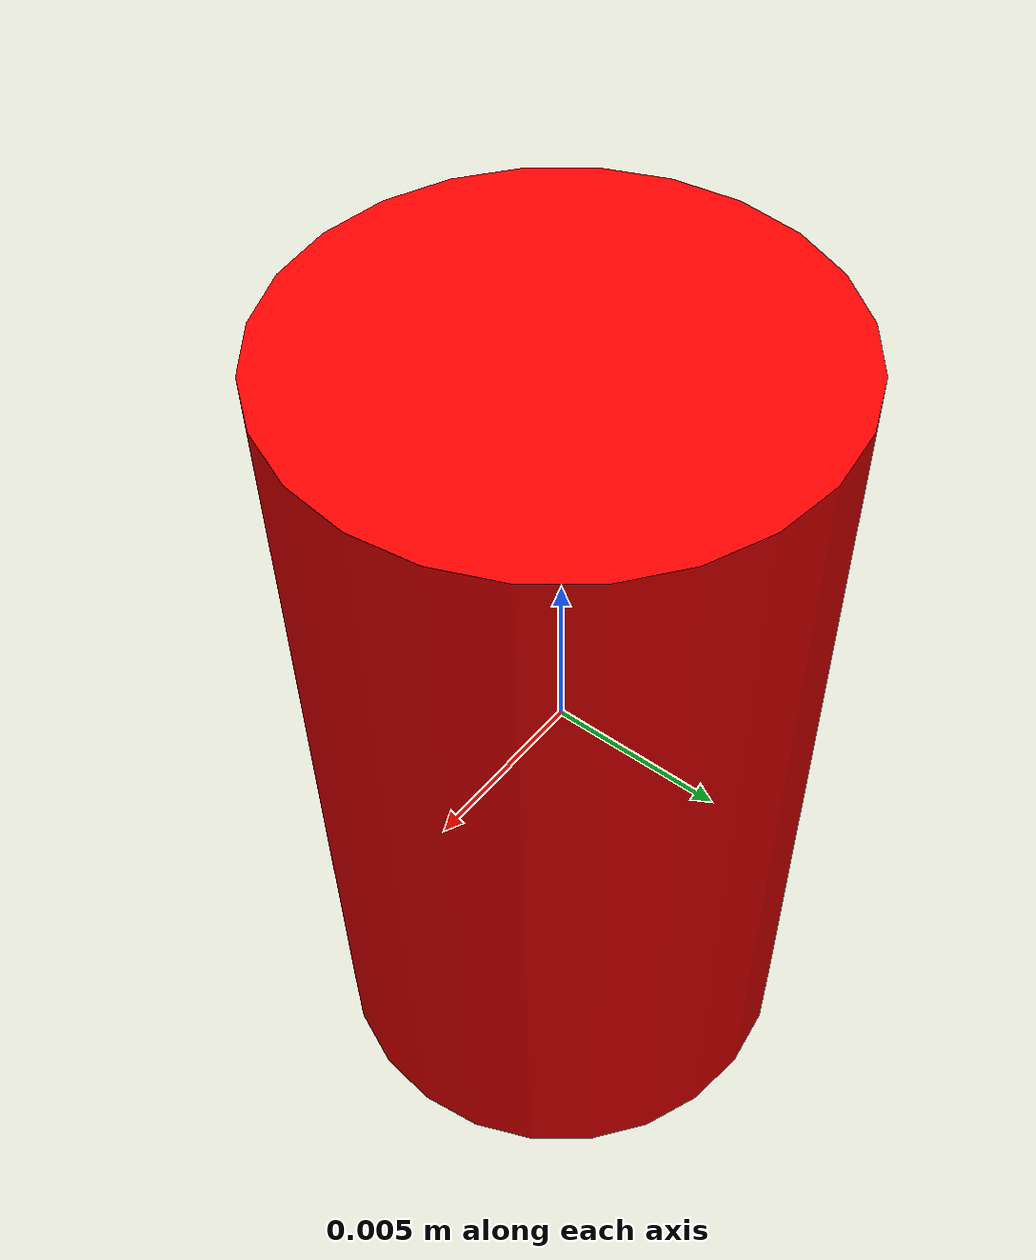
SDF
<?xml version="1.0"?>
<sdf version="1.7">
  <model name="obstacle">
    <!-- Axes:
         +X - pointing toward the handle.
         +Z - pointing toward the top.
         Origin:
         (0, 0, 0) at the center of the cap. -->

    <!-- Define the bottle cap link -->
    <link name="obstacle_link">
      <inertial>
        <pose>0 0 0 0 0 0</pose>
        <mass>0.05</mass> <!-- Reduced mass for a smaller cap -->
        <inertia>
          <ixx>0.0001</ixx>
          <ixy>0.0</ixy>
          <ixz>0.0</ixz>
          <iyy>0.0001</iyy>
          <iyz>0.0</iyz>
          <izz>0.00008</izz>
        </inertia>
      </inertial>
      <visual name="visual_obs">
        <geometry>
          <cylinder>
            <radius>0.007</radius>
            <length>0.025</length> <!-- Reduced height for a bottle cap -->
          </cylinder>
        </geometry>
        <material>
          <diffuse>1.0 0.0 0.0 1.0</diffuse> <!-- Changed color to blue -->
        </material>
      </visual>
      <collision name="collision_obs">
        <geometry>
          <cylinder>
            <radius>0.007</radius>
            <length>0.025</length> <!-- Same height for collision -->
          </cylinder>
        </geometry>
      </collision>
    </link>

    <!-- Add a revolute joint -->
  </model>
</sdf>
